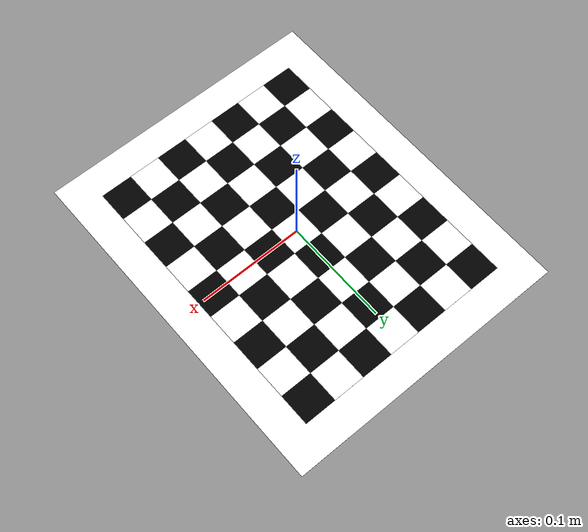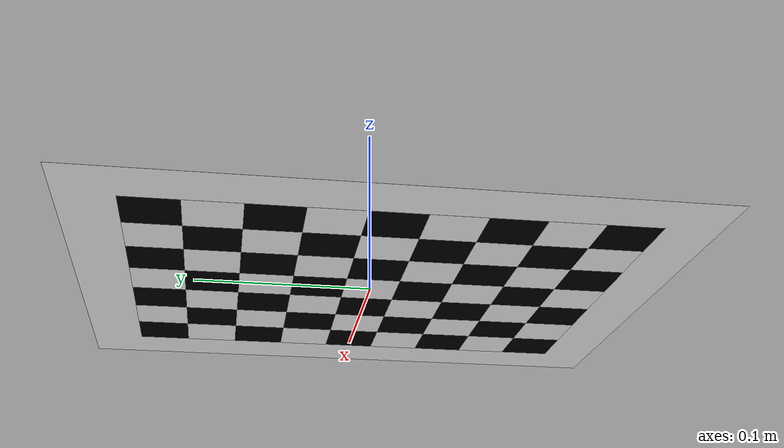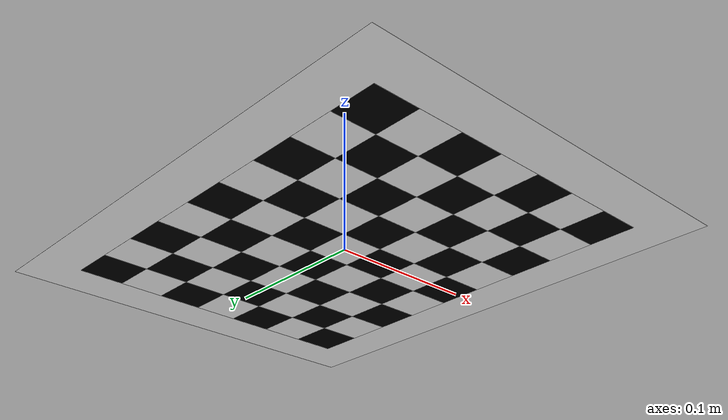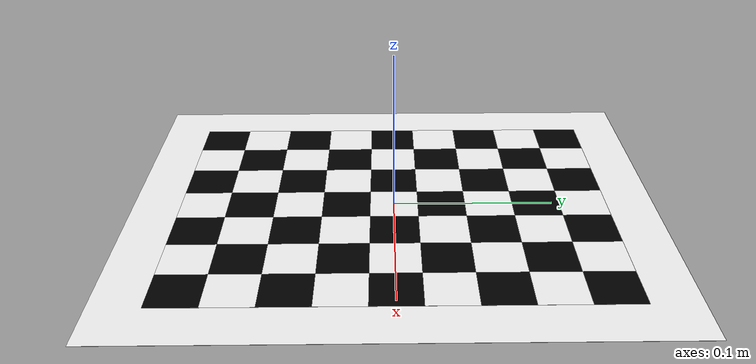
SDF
<?xml version="1.0"?>
<sdf version="1.4">
  <model name="checkerboard_7_9_0_03">
  <static>true</static>
  <link name="checkerboard_7_9_0_03_body">
      <visual name="checker_0_0">
        <pose>-0.09 -0.12000000000000001 0 0 0 0</pose>
        <geometry>
          <box>
            <size>0.03 0.03 0.0002</size>
          </box>
        </geometry>
        <material>
          <ambient>0 0 0 1</ambient>
          <diffuse>0 0 0 1</diffuse>
          <specular>0 0 0 1</specular>
          <emissive>0 0 0 1</emissive>
        </material>
      </visual>
      <visual name="checker_0_1">
        <pose>-0.09 -0.09000000000000001 0 0 0 0</pose>
        <geometry>
          <box>
            <size>0.03 0.03 0.0002</size>
          </box>
        </geometry>
        <material>
          <ambient>1 1 1 1</ambient>
          <diffuse>1 1 1 1</diffuse>
          <specular>1 1 1 1</specular>
          <emissive>1 1 1 1</emissive>
        </material>
      </visual>
      <visual name="checker_0_2">
        <pose>-0.09 -0.06000000000000001 0 0 0 0</pose>
        <geometry>
          <box>
            <size>0.03 0.03 0.0002</size>
          </box>
        </geometry>
        <material>
          <ambient>0 0 0 1</ambient>
          <diffuse>0 0 0 1</diffuse>
          <specular>0 0 0 1</specular>
          <emissive>0 0 0 1</emissive>
        </material>
      </visual>
      <visual name="checker_0_3">
        <pose>-0.09 -0.030000000000000013 0 0 0 0</pose>
        <geometry>
          <box>
            <size>0.03 0.03 0.0002</size>
          </box>
        </geometry>
        <material>
          <ambient>1 1 1 1</ambient>
          <diffuse>1 1 1 1</diffuse>
          <specular>1 1 1 1</specular>
          <emissive>1 1 1 1</emissive>
        </material>
      </visual>
      <visual name="checker_0_4">
        <pose>-0.09 0.0 0 0 0 0</pose>
        <geometry>
          <box>
            <size>0.03 0.03 0.0002</size>
          </box>
        </geometry>
        <material>
          <ambient>0 0 0 1</ambient>
          <diffuse>0 0 0 1</diffuse>
          <specular>0 0 0 1</specular>
          <emissive>0 0 0 1</emissive>
        </material>
      </visual>
      <visual name="checker_0_5">
        <pose>-0.09 0.02999999999999997 0 0 0 0</pose>
        <geometry>
          <box>
            <size>0.03 0.03 0.0002</size>
          </box>
        </geometry>
        <material>
          <ambient>1 1 1 1</ambient>
          <diffuse>1 1 1 1</diffuse>
          <specular>1 1 1 1</specular>
          <emissive>1 1 1 1</emissive>
        </material>
      </visual>
      <visual name="checker_0_6">
        <pose>-0.09 0.06 0 0 0 0</pose>
        <geometry>
          <box>
            <size>0.03 0.03 0.0002</size>
          </box>
        </geometry>
        <material>
          <ambient>0 0 0 1</ambient>
          <diffuse>0 0 0 1</diffuse>
          <specular>0 0 0 1</specular>
          <emissive>0 0 0 1</emissive>
        </material>
      </visual>
      <visual name="checker_0_7">
        <pose>-0.09 0.08999999999999997 0 0 0 0</pose>
        <geometry>
          <box>
            <size>0.03 0.03 0.0002</size>
          </box>
        </geometry>
        <material>
          <ambient>1 1 1 1</ambient>
          <diffuse>1 1 1 1</diffuse>
          <specular>1 1 1 1</specular>
          <emissive>1 1 1 1</emissive>
        </material>
      </visual>
      <visual name="checker_0_8">
        <pose>-0.09 0.12 0 0 0 0</pose>
        <geometry>
          <box>
            <size>0.03 0.03 0.0002</size>
          </box>
        </geometry>
        <material>
          <ambient>0 0 0 1</ambient>
          <diffuse>0 0 0 1</diffuse>
          <specular>0 0 0 1</specular>
          <emissive>0 0 0 1</emissive>
        </material>
      </visual>
      <visual name="checker_1_0">
        <pose>-0.06 -0.12000000000000001 0 0 0 0</pose>
        <geometry>
          <box>
            <size>0.03 0.03 0.0002</size>
          </box>
        </geometry>
        <material>
          <ambient>1 1 1 1</ambient>
          <diffuse>1 1 1 1</diffuse>
          <specular>1 1 1 1</specular>
          <emissive>1 1 1 1</emissive>
        </material>
      </visual>
      <visual name="checker_1_1">
        <pose>-0.06 -0.09000000000000001 0 0 0 0</pose>
        <geometry>
          <box>
            <size>0.03 0.03 0.0002</size>
          </box>
        </geometry>
        <material>
          <ambient>0 0 0 1</ambient>
          <diffuse>0 0 0 1</diffuse>
          <specular>0 0 0 1</specular>
          <emissive>0 0 0 1</emissive>
        </material>
      </visual>
      <visual name="checker_1_2">
        <pose>-0.06 -0.06000000000000001 0 0 0 0</pose>
        <geometry>
          <box>
            <size>0.03 0.03 0.0002</size>
          </box>
        </geometry>
        <material>
          <ambient>1 1 1 1</ambient>
          <diffuse>1 1 1 1</diffuse>
          <specular>1 1 1 1</specular>
          <emissive>1 1 1 1</emissive>
        </material>
      </visual>
      <visual name="checker_1_3">
        <pose>-0.06 -0.030000000000000013 0 0 0 0</pose>
        <geometry>
          <box>
            <size>0.03 0.03 0.0002</size>
          </box>
        </geometry>
        <material>
          <ambient>0 0 0 1</ambient>
          <diffuse>0 0 0 1</diffuse>
          <specular>0 0 0 1</specular>
          <emissive>0 0 0 1</emissive>
        </material>
      </visual>
      <visual name="checker_1_4">
        <pose>-0.06 0.0 0 0 0 0</pose>
        <geometry>
          <box>
            <size>0.03 0.03 0.0002</size>
          </box>
        </geometry>
        <material>
          <ambient>1 1 1 1</ambient>
          <diffuse>1 1 1 1</diffuse>
          <specular>1 1 1 1</specular>
          <emissive>1 1 1 1</emissive>
        </material>
      </visual>
      <visual name="checker_1_5">
        <pose>-0.06 0.02999999999999997 0 0 0 0</pose>
        <geometry>
          <box>
            <size>0.03 0.03 0.0002</size>
          </box>
        </geometry>
        <material>
          <ambient>0 0 0 1</ambient>
          <diffuse>0 0 0 1</diffuse>
          <specular>0 0 0 1</specular>
          <emissive>0 0 0 1</emissive>
        </material>
      </visual>
      <visual name="checker_1_6">
        <pose>-0.06 0.06 0 0 0 0</pose>
        <geometry>
          <box>
            <size>0.03 0.03 0.0002</size>
          </box>
        </geometry>
        <material>
          <ambient>1 1 1 1</ambient>
          <diffuse>1 1 1 1</diffuse>
          <specular>1 1 1 1</specular>
          <emissive>1 1 1 1</emissive>
        </material>
      </visual>
      <visual name="checker_1_7">
        <pose>-0.06 0.08999999999999997 0 0 0 0</pose>
        <geometry>
          <box>
            <size>0.03 0.03 0.0002</size>
          </box>
        </geometry>
        <material>
          <ambient>0 0 0 1</ambient>
          <diffuse>0 0 0 1</diffuse>
          <specular>0 0 0 1</specular>
          <emissive>0 0 0 1</emissive>
        </material>
      </visual>
      <visual name="checker_1_8">
        <pose>-0.06 0.12 0 0 0 0</pose>
        <geometry>
          <box>
            <size>0.03 0.03 0.0002</size>
          </box>
        </geometry>
        <material>
          <ambient>1 1 1 1</ambient>
          <diffuse>1 1 1 1</diffuse>
          <specular>1 1 1 1</specular>
          <emissive>1 1 1 1</emissive>
        </material>
      </visual>
      <visual name="checker_2_0">
        <pose>-0.03 -0.12000000000000001 0 0 0 0</pose>
        <geometry>
          <box>
            <size>0.03 0.03 0.0002</size>
          </box>
        </geometry>
        <material>
          <ambient>0 0 0 1</ambient>
          <diffuse>0 0 0 1</diffuse>
          <specular>0 0 0 1</specular>
          <emissive>0 0 0 1</emissive>
        </material>
      </visual>
      <visual name="checker_2_1">
        <pose>-0.03 -0.09000000000000001 0 0 0 0</pose>
        <geometry>
          <box>
            <size>0.03 0.03 0.0002</size>
          </box>
        </geometry>
        <material>
          <ambient>1 1 1 1</ambient>
          <diffuse>1 1 1 1</diffuse>
          <specular>1 1 1 1</specular>
          <emissive>1 1 1 1</emissive>
        </material>
      </visual>
      <visual name="checker_2_2">
        <pose>-0.03 -0.06000000000000001 0 0 0 0</pose>
        <geometry>
          <box>
            <size>0.03 0.03 0.0002</size>
          </box>
        </geometry>
        <material>
          <ambient>0 0 0 1</ambient>
          <diffuse>0 0 0 1</diffuse>
          <specular>0 0 0 1</specular>
          <emissive>0 0 0 1</emissive>
        </material>
      </visual>
      <visual name="checker_2_3">
        <pose>-0.03 -0.030000000000000013 0 0 0 0</pose>
        <geometry>
          <box>
            <size>0.03 0.03 0.0002</size>
          </box>
        </geometry>
        <material>
          <ambient>1 1 1 1</ambient>
          <diffuse>1 1 1 1</diffuse>
          <specular>1 1 1 1</specular>
          <emissive>1 1 1 1</emissive>
        </material>
      </visual>
      <visual name="checker_2_4">
        <pose>-0.03 0.0 0 0 0 0</pose>
        <geometry>
          <box>
            <size>0.03 0.03 0.0002</size>
          </box>
        </geometry>
        <material>
          <ambient>0 0 0 1</ambient>
          <diffuse>0 0 0 1</diffuse>
          <specular>0 0 0 1</specular>
          <emissive>0 0 0 1</emissive>
        </material>
      </visual>
      <visual name="checker_2_5">
        <pose>-0.03 0.02999999999999997 0 0 0 0</pose>
        <geometry>
          <box>
            <size>0.03 0.03 0.0002</size>
          </box>
        </geometry>
        <material>
          <ambient>1 1 1 1</ambient>
          <diffuse>1 1 1 1</diffuse>
          <specular>1 1 1 1</specular>
          <emissive>1 1 1 1</emissive>
        </material>
      </visual>
      <visual name="checker_2_6">
        <pose>-0.03 0.06 0 0 0 0</pose>
        <geometry>
          <box>
            <size>0.03 0.03 0.0002</size>
          </box>
        </geometry>
        <material>
          <ambient>0 0 0 1</ambient>
          <diffuse>0 0 0 1</diffuse>
          <specular>0 0 0 1</specular>
          <emissive>0 0 0 1</emissive>
        </material>
      </visual>
      <visual name="checker_2_7">
        <pose>-0.03 0.08999999999999997 0 0 0 0</pose>
        <geometry>
          <box>
            <size>0.03 0.03 0.0002</size>
          </box>
        </geometry>
        <material>
          <ambient>1 1 1 1</ambient>
          <diffuse>1 1 1 1</diffuse>
          <specular>1 1 1 1</specular>
          <emissive>1 1 1 1</emissive>
        </material>
      </visual>
      <visual name="checker_2_8">
        <pose>-0.03 0.12 0 0 0 0</pose>
        <geometry>
          <box>
            <size>0.03 0.03 0.0002</size>
          </box>
        </geometry>
        <material>
          <ambient>0 0 0 1</ambient>
          <diffuse>0 0 0 1</diffuse>
          <specular>0 0 0 1</specular>
          <emissive>0 0 0 1</emissive>
        </material>
      </visual>
      <visual name="checker_3_0">
        <pose>0.0 -0.12000000000000001 0 0 0 0</pose>
        <geometry>
          <box>
            <size>0.03 0.03 0.0002</size>
          </box>
        </geometry>
        <material>
          <ambient>1 1 1 1</ambient>
          <diffuse>1 1 1 1</diffuse>
          <specular>1 1 1 1</specular>
          <emissive>1 1 1 1</emissive>
        </material>
      </visual>
      <visual name="checker_3_1">
        <pose>0.0 -0.09000000000000001 0 0 0 0</pose>
        <geometry>
          <box>
            <size>0.03 0.03 0.0002</size>
          </box>
        </geometry>
        <material>
          <ambient>0 0 0 1</ambient>
          <diffuse>0 0 0 1</diffuse>
          <specular>0 0 0 1</specular>
          <emissive>0 0 0 1</emissive>
        </material>
      </visual>
      <visual name="checker_3_2">
        <pose>0.0 -0.06000000000000001 0 0 0 0</pose>
        <geometry>
          <box>
            <size>0.03 0.03 0.0002</size>
          </box>
        </geometry>
        <material>
          <ambient>1 1 1 1</ambient>
          <diffuse>1 1 1 1</diffuse>
          <specular>1 1 1 1</specular>
          <emissive>1 1 1 1</emissive>
        </material>
      </visual>
      <visual name="checker_3_3">
        <pose>0.0 -0.030000000000000013 0 0 0 0</pose>
        <geometry>
          <box>
            <size>0.03 0.03 0.0002</size>
          </box>
        </geometry>
        <material>
          <ambient>0 0 0 1</ambient>
          <diffuse>0 0 0 1</diffuse>
          <specular>0 0 0 1</specular>
          <emissive>0 0 0 1</emissive>
        </material>
      </visual>
      <visual name="checker_3_4">
        <pose>0.0 0.0 0 0 0 0</pose>
        <geometry>
          <box>
            <size>0.03 0.03 0.0002</size>
          </box>
        </geometry>
        <material>
          <ambient>1 1 1 1</ambient>
          <diffuse>1 1 1 1</diffuse>
          <specular>1 1 1 1</specular>
          <emissive>1 1 1 1</emissive>
        </material>
      </visual>
      <visual name="checker_3_5">
        <pose>0.0 0.02999999999999997 0 0 0 0</pose>
        <geometry>
          <box>
            <size>0.03 0.03 0.0002</size>
          </box>
        </geometry>
        <material>
          <ambient>0 0 0 1</ambient>
          <diffuse>0 0 0 1</diffuse>
          <specular>0 0 0 1</specular>
          <emissive>0 0 0 1</emissive>
        </material>
      </visual>
      <visual name="checker_3_6">
        <pose>0.0 0.06 0 0 0 0</pose>
        <geometry>
          <box>
            <size>0.03 0.03 0.0002</size>
          </box>
        </geometry>
        <material>
          <ambient>1 1 1 1</ambient>
          <diffuse>1 1 1 1</diffuse>
          <specular>1 1 1 1</specular>
          <emissive>1 1 1 1</emissive>
        </material>
      </visual>
      <visual name="checker_3_7">
        <pose>0.0 0.08999999999999997 0 0 0 0</pose>
        <geometry>
          <box>
            <size>0.03 0.03 0.0002</size>
          </box>
        </geometry>
        <material>
          <ambient>0 0 0 1</ambient>
          <diffuse>0 0 0 1</diffuse>
          <specular>0 0 0 1</specular>
          <emissive>0 0 0 1</emissive>
        </material>
      </visual>
      <visual name="checker_3_8">
        <pose>0.0 0.12 0 0 0 0</pose>
        <geometry>
          <box>
            <size>0.03 0.03 0.0002</size>
          </box>
        </geometry>
        <material>
          <ambient>1 1 1 1</ambient>
          <diffuse>1 1 1 1</diffuse>
          <specular>1 1 1 1</specular>
          <emissive>1 1 1 1</emissive>
        </material>
      </visual>
      <visual name="checker_4_0">
        <pose>0.030000000000000013 -0.12000000000000001 0 0 0 0</pose>
        <geometry>
          <box>
            <size>0.03 0.03 0.0002</size>
          </box>
        </geometry>
        <material>
          <ambient>0 0 0 1</ambient>
          <diffuse>0 0 0 1</diffuse>
          <specular>0 0 0 1</specular>
          <emissive>0 0 0 1</emissive>
        </material>
      </visual>
      <visual name="checker_4_1">
        <pose>0.030000000000000013 -0.09000000000000001 0 0 0 0</pose>
        <geometry>
          <box>
            <size>0.03 0.03 0.0002</size>
          </box>
        </geometry>
        <material>
          <ambient>1 1 1 1</ambient>
          <diffuse>1 1 1 1</diffuse>
          <specular>1 1 1 1</specular>
          <emissive>1 1 1 1</emissive>
        </material>
      </visual>
      <visual name="checker_4_2">
        <pose>0.030000000000000013 -0.06000000000000001 0 0 0 0</pose>
        <geometry>
          <box>
            <size>0.03 0.03 0.0002</size>
          </box>
        </geometry>
        <material>
          <ambient>0 0 0 1</ambient>
          <diffuse>0 0 0 1</diffuse>
          <specular>0 0 0 1</specular>
          <emissive>0 0 0 1</emissive>
        </material>
      </visual>
      <visual name="checker_4_3">
        <pose>0.030000000000000013 -0.030000000000000013 0 0 0 0</pose>
        <geometry>
          <box>
            <size>0.03 0.03 0.0002</size>
          </box>
        </geometry>
        <material>
          <ambient>1 1 1 1</ambient>
          <diffuse>1 1 1 1</diffuse>
          <specular>1 1 1 1</specular>
          <emissive>1 1 1 1</emissive>
        </material>
      </visual>
      <visual name="checker_4_4">
        <pose>0.030000000000000013 0.0 0 0 0 0</pose>
        <geometry>
          <box>
            <size>0.03 0.03 0.0002</size>
          </box>
        </geometry>
        <material>
          <ambient>0 0 0 1</ambient>
          <diffuse>0 0 0 1</diffuse>
          <specular>0 0 0 1</specular>
          <emissive>0 0 0 1</emissive>
        </material>
      </visual>
      <visual name="checker_4_5">
        <pose>0.030000000000000013 0.02999999999999997 0 0 0 0</pose>
        <geometry>
          <box>
            <size>0.03 0.03 0.0002</size>
          </box>
        </geometry>
        <material>
          <ambient>1 1 1 1</ambient>
          <diffuse>1 1 1 1</diffuse>
          <specular>1 1 1 1</specular>
          <emissive>1 1 1 1</emissive>
        </material>
      </visual>
      <visual name="checker_4_6">
        <pose>0.030000000000000013 0.06 0 0 0 0</pose>
        <geometry>
          <box>
            <size>0.03 0.03 0.0002</size>
          </box>
        </geometry>
        <material>
          <ambient>0 0 0 1</ambient>
          <diffuse>0 0 0 1</diffuse>
          <specular>0 0 0 1</specular>
          <emissive>0 0 0 1</emissive>
        </material>
      </visual>
      <visual name="checker_4_7">
        <pose>0.030000000000000013 0.08999999999999997 0 0 0 0</pose>
        <geometry>
          <box>
            <size>0.03 0.03 0.0002</size>
          </box>
        </geometry>
        <material>
          <ambient>1 1 1 1</ambient>
          <diffuse>1 1 1 1</diffuse>
          <specular>1 1 1 1</specular>
          <emissive>1 1 1 1</emissive>
        </material>
      </visual>
      <visual name="checker_4_8">
        <pose>0.030000000000000013 0.12 0 0 0 0</pose>
        <geometry>
          <box>
            <size>0.03 0.03 0.0002</size>
          </box>
        </geometry>
        <material>
          <ambient>0 0 0 1</ambient>
          <diffuse>0 0 0 1</diffuse>
          <specular>0 0 0 1</specular>
          <emissive>0 0 0 1</emissive>
        </material>
      </visual>
      <visual name="checker_5_0">
        <pose>0.059999999999999984 -0.12000000000000001 0 0 0 0</pose>
        <geometry>
          <box>
            <size>0.03 0.03 0.0002</size>
          </box>
        </geometry>
        <material>
          <ambient>1 1 1 1</ambient>
          <diffuse>1 1 1 1</diffuse>
          <specular>1 1 1 1</specular>
          <emissive>1 1 1 1</emissive>
        </material>
      </visual>
      <visual name="checker_5_1">
        <pose>0.059999999999999984 -0.09000000000000001 0 0 0 0</pose>
        <geometry>
          <box>
            <size>0.03 0.03 0.0002</size>
          </box>
        </geometry>
        <material>
          <ambient>0 0 0 1</ambient>
          <diffuse>0 0 0 1</diffuse>
          <specular>0 0 0 1</specular>
          <emissive>0 0 0 1</emissive>
        </material>
      </visual>
      <visual name="checker_5_2">
        <pose>0.059999999999999984 -0.06000000000000001 0 0 0 0</pose>
        <geometry>
          <box>
            <size>0.03 0.03 0.0002</size>
          </box>
        </geometry>
        <material>
          <ambient>1 1 1 1</ambient>
          <diffuse>1 1 1 1</diffuse>
          <specular>1 1 1 1</specular>
          <emissive>1 1 1 1</emissive>
        </material>
      </visual>
      <visual name="checker_5_3">
        <pose>0.059999999999999984 -0.030000000000000013 0 0 0 0</pose>
        <geometry>
          <box>
            <size>0.03 0.03 0.0002</size>
          </box>
        </geometry>
        <material>
          <ambient>0 0 0 1</ambient>
          <diffuse>0 0 0 1</diffuse>
          <specular>0 0 0 1</specular>
          <emissive>0 0 0 1</emissive>
        </material>
      </visual>
      <visual name="checker_5_4">
        <pose>0.059999999999999984 0.0 0 0 0 0</pose>
        <geometry>
          <box>
            <size>0.03 0.03 0.0002</size>
          </box>
        </geometry>
        <material>
          <ambient>1 1 1 1</ambient>
          <diffuse>1 1 1 1</diffuse>
          <specular>1 1 1 1</specular>
          <emissive>1 1 1 1</emissive>
        </material>
      </visual>
      <visual name="checker_5_5">
        <pose>0.059999999999999984 0.02999999999999997 0 0 0 0</pose>
        <geometry>
          <box>
            <size>0.03 0.03 0.0002</size>
          </box>
        </geometry>
        <material>
          <ambient>0 0 0 1</ambient>
          <diffuse>0 0 0 1</diffuse>
          <specular>0 0 0 1</specular>
          <emissive>0 0 0 1</emissive>
        </material>
      </visual>
      <visual name="checker_5_6">
        <pose>0.059999999999999984 0.06 0 0 0 0</pose>
        <geometry>
          <box>
            <size>0.03 0.03 0.0002</size>
          </box>
        </geometry>
        <material>
          <ambient>1 1 1 1</ambient>
          <diffuse>1 1 1 1</diffuse>
          <specular>1 1 1 1</specular>
          <emissive>1 1 1 1</emissive>
        </material>
      </visual>
      <visual name="checker_5_7">
        <pose>0.059999999999999984 0.08999999999999997 0 0 0 0</pose>
        <geometry>
          <box>
            <size>0.03 0.03 0.0002</size>
          </box>
        </geometry>
        <material>
          <ambient>0 0 0 1</ambient>
          <diffuse>0 0 0 1</diffuse>
          <specular>0 0 0 1</specular>
          <emissive>0 0 0 1</emissive>
        </material>
      </visual>
      <visual name="checker_5_8">
        <pose>0.059999999999999984 0.12 0 0 0 0</pose>
        <geometry>
          <box>
            <size>0.03 0.03 0.0002</size>
          </box>
        </geometry>
        <material>
          <ambient>1 1 1 1</ambient>
          <diffuse>1 1 1 1</diffuse>
          <specular>1 1 1 1</specular>
          <emissive>1 1 1 1</emissive>
        </material>
      </visual>
      <visual name="checker_6_0">
        <pose>0.09000000000000001 -0.12000000000000001 0 0 0 0</pose>
        <geometry>
          <box>
            <size>0.03 0.03 0.0002</size>
          </box>
        </geometry>
        <material>
          <ambient>0 0 0 1</ambient>
          <diffuse>0 0 0 1</diffuse>
          <specular>0 0 0 1</specular>
          <emissive>0 0 0 1</emissive>
        </material>
      </visual>
      <visual name="checker_6_1">
        <pose>0.09000000000000001 -0.09000000000000001 0 0 0 0</pose>
        <geometry>
          <box>
            <size>0.03 0.03 0.0002</size>
          </box>
        </geometry>
        <material>
          <ambient>1 1 1 1</ambient>
          <diffuse>1 1 1 1</diffuse>
          <specular>1 1 1 1</specular>
          <emissive>1 1 1 1</emissive>
        </material>
      </visual>
      <visual name="checker_6_2">
        <pose>0.09000000000000001 -0.06000000000000001 0 0 0 0</pose>
        <geometry>
          <box>
            <size>0.03 0.03 0.0002</size>
          </box>
        </geometry>
        <material>
          <ambient>0 0 0 1</ambient>
          <diffuse>0 0 0 1</diffuse>
          <specular>0 0 0 1</specular>
          <emissive>0 0 0 1</emissive>
        </material>
      </visual>
      <visual name="checker_6_3">
        <pose>0.09000000000000001 -0.030000000000000013 0 0 0 0</pose>
        <geometry>
          <box>
            <size>0.03 0.03 0.0002</size>
          </box>
        </geometry>
        <material>
          <ambient>1 1 1 1</ambient>
          <diffuse>1 1 1 1</diffuse>
          <specular>1 1 1 1</specular>
          <emissive>1 1 1 1</emissive>
        </material>
      </visual>
      <visual name="checker_6_4">
        <pose>0.09000000000000001 0.0 0 0 0 0</pose>
        <geometry>
          <box>
            <size>0.03 0.03 0.0002</size>
          </box>
        </geometry>
        <material>
          <ambient>0 0 0 1</ambient>
          <diffuse>0 0 0 1</diffuse>
          <specular>0 0 0 1</specular>
          <emissive>0 0 0 1</emissive>
        </material>
      </visual>
      <visual name="checker_6_5">
        <pose>0.09000000000000001 0.02999999999999997 0 0 0 0</pose>
        <geometry>
          <box>
            <size>0.03 0.03 0.0002</size>
          </box>
        </geometry>
        <material>
          <ambient>1 1 1 1</ambient>
          <diffuse>1 1 1 1</diffuse>
          <specular>1 1 1 1</specular>
          <emissive>1 1 1 1</emissive>
        </material>
      </visual>
      <visual name="checker_6_6">
        <pose>0.09000000000000001 0.06 0 0 0 0</pose>
        <geometry>
          <box>
            <size>0.03 0.03 0.0002</size>
          </box>
        </geometry>
        <material>
          <ambient>0 0 0 1</ambient>
          <diffuse>0 0 0 1</diffuse>
          <specular>0 0 0 1</specular>
          <emissive>0 0 0 1</emissive>
        </material>
      </visual>
      <visual name="checker_6_7">
        <pose>0.09000000000000001 0.08999999999999997 0 0 0 0</pose>
        <geometry>
          <box>
            <size>0.03 0.03 0.0002</size>
          </box>
        </geometry>
        <material>
          <ambient>1 1 1 1</ambient>
          <diffuse>1 1 1 1</diffuse>
          <specular>1 1 1 1</specular>
          <emissive>1 1 1 1</emissive>
        </material>
      </visual>
      <visual name="checker_6_8">
        <pose>0.09000000000000001 0.12 0 0 0 0</pose>
        <geometry>
          <box>
            <size>0.03 0.03 0.0002</size>
          </box>
        </geometry>
        <material>
          <ambient>0 0 0 1</ambient>
          <diffuse>0 0 0 1</diffuse>
          <specular>0 0 0 1</specular>
          <emissive>0 0 0 1</emissive>
        </material>
      </visual>
      <visual name="checker_backdrop">
        <pose>0 0 0 0 0 0</pose>
        <geometry>
          <box>
            <size>0.27 0.32999999999999996 0.0001</size>
          </box>
        </geometry>
        <material>
          <ambient>1 1 1 1</ambient>
          <diffuse>1 1 1 1</diffuse>
          <specular>1 1 1 1</specular>
          <emissive>1 1 1 1</emissive>
        </material>
      </visual>
    </link>
  </model>
</sdf>
